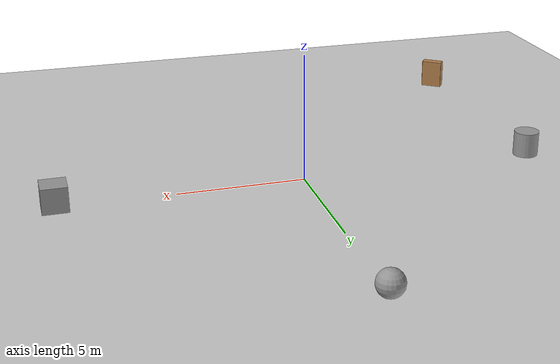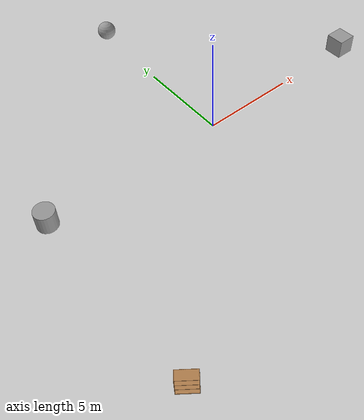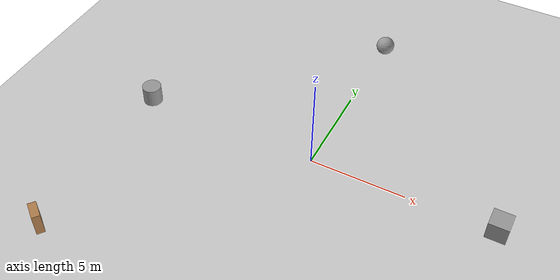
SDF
<sdf version="1.7">
 <world name="default">
  <light name="sun" type="directional">
   <pose>0 0 10 0 -0 0</pose>
   <diffuse>0.8 0.8 0.8 1</diffuse>
   <specular>0.2 0.2 0.2 1</specular>
   <attenuation>
    <range>1000</range>
    <constant>0.9</constant>
    <linear>0.01</linear>
    <quadratic>0.001</quadratic>
   </attenuation>
   <direction>-0.5 0.1 -0.9</direction>
   <spot><inner_angle>0</inner_angle><outer_angle>0</outer_angle><falloff>0</falloff></spot>
  </light>
  <model name="ground_plane">
   <static>1</static>
   <link name="link">
    <collision name="collision">
     <geometry><plane><normal>0 0 1</normal><size>100 100</size></plane></geometry>
     <surface>
      <contact><collide_bitmask>65535</collide_bitmask></contact>
      <friction><ode><mu>100</mu><mu2>50</mu2></ode></friction>
     </surface>
    </collision>
    <visual name="visual">
     <cast_shadows>0</cast_shadows>
     <geometry><plane><normal>0 0 1</normal><size>100 100</size></plane></geometry>
     <material>
      <script><uri>file://media/materials/scripts/gazebo.material</uri><name>Gazebo/Grey</name></script>
     </material>
    </visual>
   </link>
  </model>
  <gravity>0 0 -9.8</gravity>
  <magnetic_field>6e-06 2.3e-05 -4.2e-05</magnetic_field>
  <atmosphere type="adiabatic"/>
  <physics type="ode">
   <max_step_size>0.001</max_step_size>
   <real_time_factor>1</real_time_factor>
   <real_time_update_rate>1000</real_time_update_rate>
  </physics>
  <scene><ambient>0.4 0.4 0.4 1</ambient><background>0.7 0.7 0.7 1</background><shadows>1</shadows></scene>
  <spherical_coordinates>
   <surface_model>EARTH_WGS84</surface_model>
   <latitude_deg>0</latitude_deg>
   <longitude_deg>0</longitude_deg>
   <elevation>0</elevation>
   <heading_deg>0</heading_deg>
  </spherical_coordinates>
  <model name="unit_box">
   <pose>9.49095 0.019763 0.499995 0 1e-05 0</pose>
   <link name="link">
    <inertial>
     <mass>1</mass>
     <inertia>
      <ixx>0.166667</ixx>
      <ixy>0</ixy>
      <ixz>0</ixz>
      <iyy>0.166667</iyy>
      <iyz>0</iyz>
      <izz>0.166667</izz>
     </inertia>
    </inertial>
    <collision name="collision"><geometry><box><size>1 1 1</size></box></geometry></collision>
    <visual name="visual">
     <geometry><box><size>1 1 1</size></box></geometry>
     <material>
      <script><name>Gazebo/Grey</name><uri>file://media/materials/scripts/gazebo.material</uri></script>
     </material>
    </visual>
   </link>
  </model>
  <model name="unit_sphere">
   <pose>0.095953 9.62479 0.5 0 -0 0</pose>
   <link name="link">
    <inertial>
     <mass>1</mass>
     <inertia><ixx>0.1</ixx><ixy>0</ixy><ixz>0</ixz><iyy>0.1</iyy><iyz>0</iyz><izz>0.1</izz></inertia>
    </inertial>
    <collision name="collision"><geometry><sphere><radius>0.5</radius></sphere></geometry></collision>
    <visual name="visual">
     <geometry><sphere><radius>0.5</radius></sphere></geometry>
     <material>
      <script><name>Gazebo/Grey</name><uri>file://media/materials/scripts/gazebo.material</uri></script>
     </material>
    </visual>
   </link>
  </model>
  <model name="unit_cylinder">
   <pose>-9.4848 0.014633 0.499998 3e-06 -3e-06 0</pose>
   <link name="link">
    <inertial>
     <mass>1</mass>
     <inertia><ixx>0.145833</ixx><ixy>0</ixy><ixz>0</ixz><iyy>0.145833</iyy><iyz>0</iyz><izz>0.125</izz></inertia>
    </inertial>
    <collision name="collision">
     <geometry><cylinder><radius>0.5</radius><length>1</length></cylinder></geometry>
    </collision>
    <visual name="visual">
     <geometry><cylinder><radius>0.5</radius><length>1</length></cylinder></geometry>
     <material>
      <script><name>Gazebo/Grey</name><uri>file://media/materials/scripts/gazebo.material</uri></script>
     </material>
    </visual>
   </link>
  </model>
  <model name="bookshelf">
   <static>1</static>
   <link name="link">
    <inertial><mass>1</mass></inertial>
    <collision name="back">
     <pose>0 0.005 0.6 0 -0 0</pose>
     <geometry><box><size>0.9 0.01 1.2</size></box></geometry>
    </collision>
    <visual name="visual1">
     <pose>0 0.005 0.6 0 -0 0</pose>
     <geometry><box><size>0.9 0.01 1.2</size></box></geometry>
     <material>
      <script><uri>file://media/materials/scripts/gazebo.material</uri><name>Gazebo/Wood</name></script>
     </material>
    </visual>
    <collision name="left_side">
     <pose>0.45 -0.195 0.6 0 -0 0</pose>
     <geometry><box><size>0.02 0.4 1.2</size></box></geometry>
    </collision>
    <visual name="visual2">
     <pose>0.45 -0.195 0.6 0 -0 0</pose>
     <geometry><box><size>0.02 0.4 1.2</size></box></geometry>
     <material>
      <script><uri>file://media/materials/scripts/gazebo.material</uri><name>Gazebo/Wood</name></script>
     </material>
    </visual>
    <collision name="right_side">
     <pose>-0.45 -0.195 0.6 0 -0 0</pose>
     <geometry><box><size>0.02 0.4 1.2</size></box></geometry>
    </collision>
    <visual name="visual3">
     <pose>-0.45 -0.195 0.6 0 -0 0</pose>
     <geometry><box><size>0.02 0.4 1.2</size></box></geometry>
     <material>
      <script><uri>file://media/materials/scripts/gazebo.material</uri><name>Gazebo/Wood</name></script>
     </material>
    </visual>
    <collision name="bottom">
     <pose>0 -0.195 0.03 0 -0 0</pose>
     <geometry><box><size>0.88 0.4 0.06</size></box></geometry>
    </collision>
    <visual name="visual4">
     <pose>0 -0.195 0.03 0 -0 0</pose>
     <geometry><box><size>0.88 0.4 0.06</size></box></geometry>
     <material>
      <script><uri>file://media/materials/scripts/gazebo.material</uri><name>Gazebo/Wood</name></script>
     </material>
    </visual>
    <collision name="top">
     <pose>0 -0.195 1.19 0 -0 0</pose>
     <geometry><box><size>0.88 0.4 0.02</size></box></geometry>
    </collision>
    <visual name="visual5">
     <pose>0 -0.195 1.19 0 -0 0</pose>
     <geometry><box><size>0.88 0.4 0.02</size></box></geometry>
     <material>
      <script><uri>file://media/materials/scripts/gazebo.material</uri><name>Gazebo/Wood</name></script>
     </material>
    </visual>
    <collision name="low_shelf">
     <pose>0 -0.195 0.43 0 -0 0</pose>
     <geometry><box><size>0.88 0.4 0.02</size></box></geometry>
    </collision>
    <visual name="visual6">
     <pose>0 -0.195 0.43 0 -0 0</pose>
     <geometry><box><size>0.88 0.4 0.02</size></box></geometry>
     <material>
      <script><uri>file://media/materials/scripts/gazebo.material</uri><name>Gazebo/Wood</name></script>
     </material>
    </visual>
    <collision name="high_shelf">
     <pose>0 -0.195 0.8 0 -0 0</pose>
     <geometry><box><size>0.88 0.4 0.02</size></box></geometry>
    </collision>
    <visual name="visual7">
     <pose>0 -0.195 0.8 0 -0 0</pose>
     <geometry><box><size>0.88 0.4 0.02</size></box></geometry>
     <material>
      <script><uri>file://media/materials/scripts/gazebo.material</uri><name>Gazebo/Wood</name></script>
     </material>
    </visual>
   </link>
   <pose>-9.26151 -9.40418 -0 0 0 -0.664161</pose>
  </model>
 </world>
</sdf>
